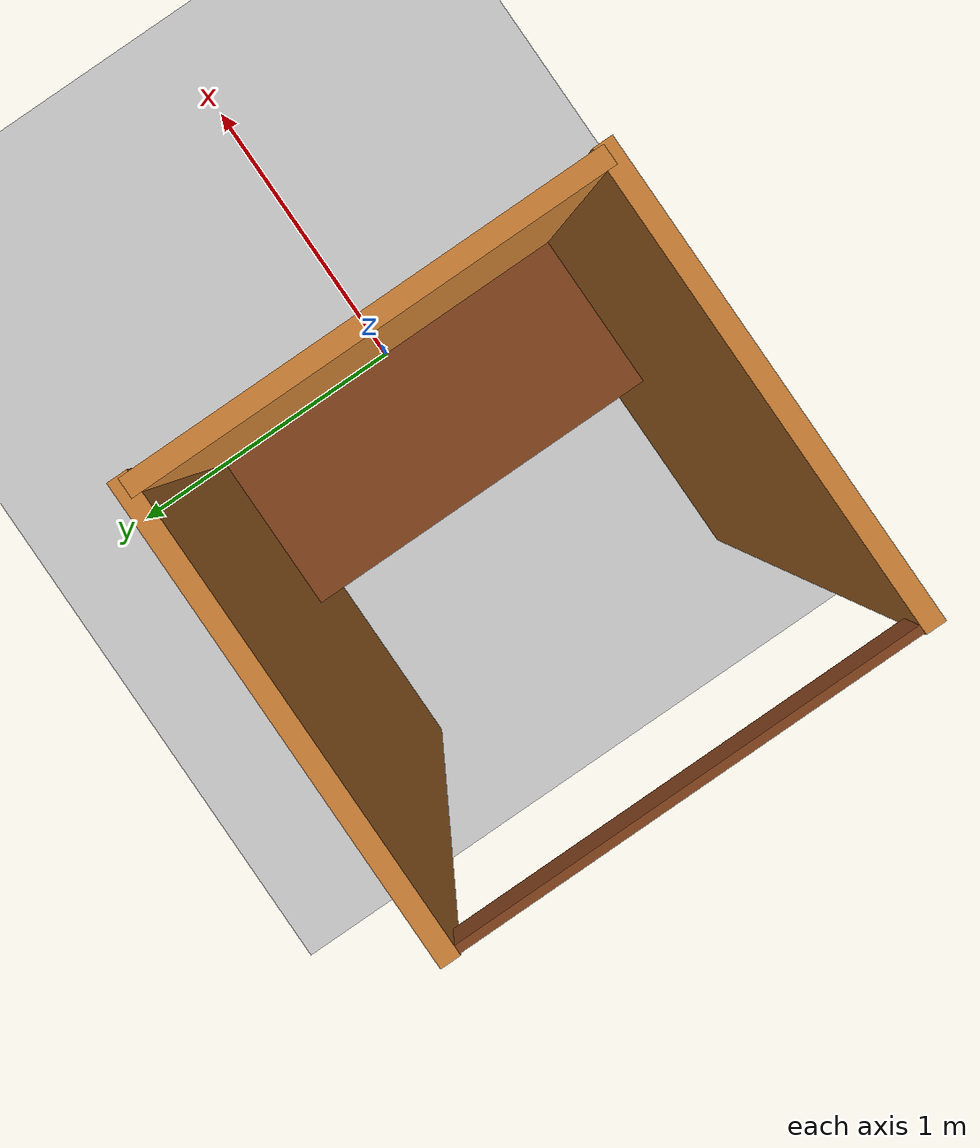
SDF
<?xml version="1.0"?>
<sdf version='1.9'>
  <world name='empty'>
    <physics name='1ms' type='ignored'>
      <max_step_size>0.001</max_step_size>
      <real_time_factor>1</real_time_factor>
      <real_time_update_rate>1000</real_time_update_rate>
    </physics>
    <plugin name='gz::sim::systems::Physics' filename='ignition-gazebo-physics-system' />
    <plugin name='gz::sim::systems::UserCommands' filename='ignition-gazebo-user-commands-system' />
    <plugin name='gz::sim::systems::SceneBroadcaster'
      filename='ignition-gazebo-scene-broadcaster-system' />
    <plugin name='gz::sim::systems::Contact' filename='ignition-gazebo-contact-system' />
    <gravity>0 0 -9.8</gravity>
    <magnetic_field>6e-06 2.3e-05 -4.2e-05</magnetic_field>
    <atmosphere type='adiabatic' />
    <scene>
      <ambient>0.4 0.4 0.4 1</ambient>
      <background>0.7 0.7 0.7 1</background>
      <shadows>true</shadows>
    </scene>

    <model name='ground_plane'>
      <static>true</static>
      <link name='link'>
        <collision name='collision'>
          <geometry>
            <plane>
              <normal>0 0 1</normal>
              <size>100 100</size>
            </plane>
          </geometry>
          <surface>
            <friction>
              <ode />
            </friction>
            <bounce />
            <contact />
          </surface>
        </collision>
        <visual name='visual'>
          <geometry>
            <plane>
              <normal>0 0 1</normal>
              <size>100 100</size>
            </plane>
          </geometry>
          <material>
            <ambient>0.8 0.8 0.8 1</ambient>
            <diffuse>0.8 0.8 0.8 1</diffuse>
            <specular>0.8 0.8 0.8 1</specular>
          </material>
        </visual>
        <pose>0 0 0 0 -0 0</pose>
        <inertial>
          <pose>0 0 0 0 -0 0</pose>
          <mass>1</mass>
          <inertia>
            <ixx>1</ixx>
            <ixy>0</ixy>
            <ixz>0</ixz>
            <iyy>1</iyy>
            <iyz>0</iyz>
            <izz>1</izz>
          </inertia>
        </inertial>
        <enable_wind>false</enable_wind>
      </link>
      <pose>0 0 0 0 -0 0</pose>
      <self_collide>false</self_collide>
    </model>

    <model name='Operator_booth' canonical_link='Par1'>
      <pose>0 0 1.2 1.5708 0 -1.57</pose>
      <static>true</static>
      <link name='Par1'>
        <inertial>
          <inertia>
            <ixx>0.16666</ixx>
            <ixy>0</ixy>
            <ixz>0</ixz>
            <iyy>0.16666</iyy>
            <iyz>0</iyz>
            <izz>0.16666</izz>
          </inertia>
          <mass>1</mass>
          <pose>0 0 0 0 -0 0</pose>
        </inertial>
        <collision name='Par1_collision'>
          <geometry>
            <box>
              <size>1.2 2.4 0.05</size>
            </box>
          </geometry>
          <surface>
            <friction>
              <ode />
            </friction>
            <bounce />
            <contact />
          </surface>
        </collision>
        <visual name='Par1_visual'>
          <geometry>
            <box>
              <size>1.2 2.4 0.05</size>
            </box>
          </geometry>
          <material>
            <ambient>0.8 0.5 0.2 1</ambient>
            <diffuse>0.8 0.5 0.2 1</diffuse>
            <specular>0.4 0.2 0.1 1</specular>
          </material>
        </visual>
        <pose>0 0 0 0 -0 0</pose>
        <enable_wind>false</enable_wind>
      </link>

      <link name='Par2'>
        <pose relative_to='Par1'>0.6 0 0.57 0 1.57 0</pose>
        <inertial>
          <inertia>
            <ixx>0.16666</ixx>
            <ixy>0</ixy>
            <ixz>0</ixz>
            <iyy>0.16666</iyy>
            <iyz>0</iyz>
            <izz>0.16666</izz>
          </inertia>
          <mass>1</mass>
          <pose>0 0 0 0 -0 0</pose>
        </inertial>
        <collision name='Par2_collision'>
          <geometry>
            <box>
              <size>1.2 2.4 0.05</size>
            </box>
          </geometry>
          <surface>
            <friction>
              <ode />
            </friction>
            <bounce />
            <contact />
          </surface>
        </collision>
        <visual name='Par2_visual'>
          <geometry>
            <box>
              <size>1.2 2.4 0.05</size>
            </box>
          </geometry>
          <material>
            <ambient>0.8 0.5 0.2 1</ambient>
            <diffuse>0.8 0.5 0.2 1</diffuse>
            <specular>0.4 0.2 0.1 1</specular>
          </material>
        </visual>
        <pose>0 0 0 0 -0 0</pose>
        <enable_wind>false</enable_wind>
      </link>

      <link name='Par3'>
        <pose relative_to="Par1">
          -0.6 0 0.57 0 1.57 0
        </pose>
        <inertial>
          <inertia>
            <ixx>0.16666</ixx>
            <ixy>0</ixy>
            <ixz>0</ixz>
            <iyy>0.16666</iyy>
            <iyz>0</iyz>
            <izz>0.16666</izz>
          </inertia>
          <mass>1</mass>
          <pose>0 0 0 0 -0 0</pose>
        </inertial>
        <collision name='Par3_collision'>
          <geometry>
            <box>
              <size>1.2 2.4 0.05</size>
            </box>
          </geometry>
          <surface>
            <friction>
              <ode />
            </friction>
            <bounce />
            <contact />
          </surface>
        </collision>
        <visual name='Par3_visual'>
          <geometry>
            <box>
              <size>1.2 2.4 0.05</size>
            </box>
          </geometry>
          <material>
            <ambient>0.8 0.5 0.2 1</ambient>
            <diffuse>0.8 0.5 0.2 1</diffuse>
            <specular>0.4 0.2 0.1 1</specular>
          </material>
        </visual>
        <pose>0 0 0 0 -0 0</pose>
        <enable_wind>false</enable_wind>
      </link>

      <link name='Blo1'>
        <pose relative_to='Par1'>0 1.144 1.156 0 0 1.57</pose>
        <inertial>
          <inertia>
            <ixx>0.16666</ixx>
            <ixy>0</ixy>
            <ixz>0</ixz>
            <iyy>0.16666</iyy>
            <iyz>0</iyz>
            <izz>0.16666</izz>
          </inertia>
          <mass>1</mass>
          <pose>0 0 0 0 -0 0</pose>
        </inertial>
        <collision name='Blo1_collision'>
          <geometry>
            <box>
              <size>0.111 1.2 0.02</size>
            </box>
          </geometry>
          <surface>
            <friction>
              <ode />
            </friction>
            <bounce />
            <contact />
          </surface>
        </collision>
        <visual name='Blo1_visual'>
          <geometry>
            <box>
              <size>0.111 1.2 0.02</size>
            </box>
          </geometry>
          <material>
            <ambient>0.5 0.25 0.1 1</ambient>
            <diffuse>0.5 0.25 0.1 1</diffuse>
            <specular>0.3 0.15 0.05 1</specular>
          </material>
        </visual>
        <pose>0 0 0 0 -0 0</pose>
        <enable_wind>false</enable_wind>
      </link>

      <link name='Blo2'>
        <pose relative_to='Par1'>0 -0.4 0.27 0 1.57 1.57</pose>
        <inertial>
          <inertia>
            <ixx>0.16666</ixx>
            <ixy>0</ixy>
            <ixz>0</ixz>
            <iyy>0.16666</iyy>
            <iyz>0</iyz>
            <izz>0.16666</izz>
          </inertia>
          <mass>1</mass>
          <pose>0 0 0 0 -0 0</pose>
        </inertial>
        <collision name='Blo2_collision'>
          <geometry>
            <box>
              <size>0.5 1.2 0.1</size>
            </box>
          </geometry>
          <surface>
            <friction>
              <ode />
            </friction>
            <bounce />
            <contact />
          </surface>
        </collision>
        <visual name='Blo2_visual'>
          <geometry>
            <box>
              <size>0.5 1.2 0.1</size>
            </box>
          </geometry>
          <material>
            <ambient>0.5 0.25 0.1 1</ambient>
            <diffuse>0.5 0.25 0.1 1</diffuse>
            <specular>0.3 0.15 0.05 1</specular>
          </material>
        </visual>
        <pose>0 0 0 0 -0 0</pose>
        <enable_wind>false</enable_wind>
      </link>

    </model>

    <light name='sun' type='directional'>
      <pose>0 0 -10 0 -0 0</pose>
      <cast_shadows>true</cast_shadows>
      <intensity>1</intensity>
      <direction>0.5 0.1 -0.9</direction>
      <diffuse>0.8 0.8 0.8 1</diffuse>
      <specular>0.2 0.2 0.2 1</specular>
      <attenuation>
        <range>1000</range>
        <linear>0.01</linear>
        <constant>0.90000000000000002</constant>
        <quadratic>0.001</quadratic>
      </attenuation>
      <spot>
        <inner_angle>0</inner_angle>
        <outer_angle>0</outer_angle>
        <falloff>0</falloff>
      </spot>
    </light>
  </world>
</sdf>
